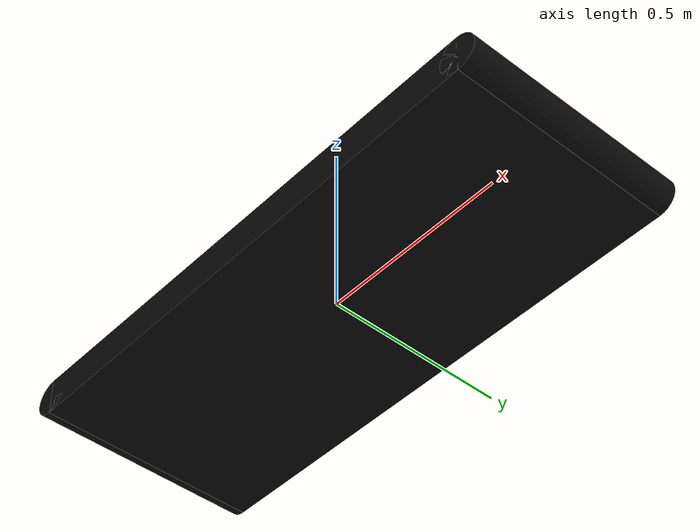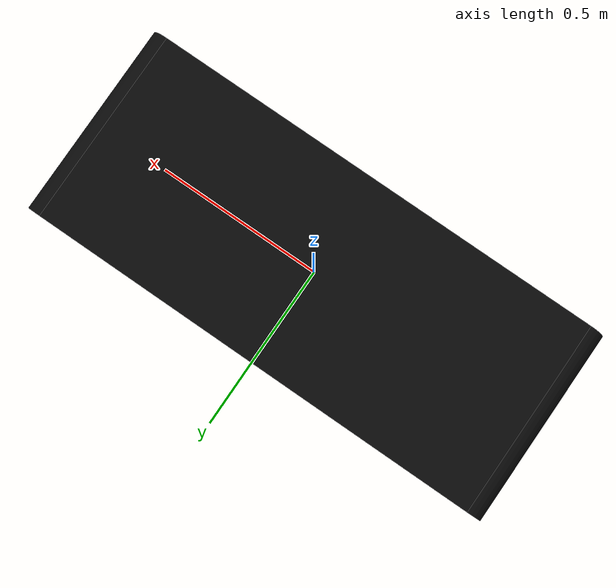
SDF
<?xml version='1.0'?>
<sdf version="1.7">

    <model name="conveyor">

        <link name='base_link'>
            <pose relative_to='__model__'>0 0 0 0 0 0</pose>
            <inertial>
                <mass>6.06</mass>
                <inertia>
                    <ixx>0.002731</ixx>
                    <ixy>0</ixy>
                    <ixz>0</ixz>
                    <iyy>0.032554</iyy>
                    <iyz>1.5e-05</iyz>
                    <izz>0.031391</izz>
                </inertia>
            </inertial>
            <collision name='main_collision'>
                <pose relative_to='base_link'>0 0 0 0 0 0</pose>
                <geometry>
                    <box>
                        <size>1.4 0.6 0.1</size>
                    </box>
                </geometry>
                <surface>
                    <friction>
                        <ode>
                            <mu>0.7</mu>
                            <mu2>150</mu2>
                            <fdir1>0 1 0</fdir1>
                        </ode>
                    </friction>
                </surface>
            </collision>
            <collision name='collision_1'>
                <pose relative_to='base_link'>0.7 0 0 -1.570796327 0 0</pose>
                <geometry>
                    <cylinder>
                        <length>0.6</length>
                        <radius>0.05</radius>
                    </cylinder>
                </geometry>
                <surface>
                    <friction>
                        <ode>
                            <mu>0.7</mu>
                            <mu2>150</mu2>
                            <fdir1>0 1 0</fdir1>
                        </ode>
                    </friction>
                </surface>
            </collision>
            <collision name='collision_2'>
                <pose relative_to='base_link'>-0.7 0 0 -1.570796327 0 0</pose>
                <geometry>
                    <cylinder>
                        <length>0.6</length>
                        <radius>0.05</radius>
                    </cylinder>
                </geometry>
                <surface>
                    <friction>
                        <ode>
                            <mu>0.7</mu>
                            <mu2>150</mu2>
                            <fdir1>0 1 0</fdir1>
                        </ode>
                    </friction>
                </surface>
            </collision>
            <visual name='main_visual'>
                <pose relative_to='base_link'>0 0 0 0 0 0</pose>
                <geometry>
                    <box>
                        <size>1.4 0.6 0.1</size>
                    </box>
                </geometry>
                <material>
                    <ambient>0.02 0.02 0.02 1</ambient>  <!-- Near-black ambient -->
    <diffuse>0.04 0.04 0.04 1</diffuse>  <!-- Barely visible under light -->
    <specular>0.1 0.1 0.1 1</specular>  <!-- Almost matte -->
    <emissive>0 0 0 1</emissive>
                </material>

            </visual>
            <visual name='visual_1'>
                <pose relative_to='base_link'>0.7 0 0 -1.570796327 0 0</pose>
                <geometry>
                    <cylinder>
                        <length>0.6</length>
                        <radius>0.05</radius>
                    </cylinder>
                </geometry>
                <material>
                    <ambient>0.02 0.02 0.02 1</ambient>  <!-- Near-black ambient -->
    <diffuse>0.04 0.04 0.04 1</diffuse>  <!-- Barely visible under light -->
    <specular>0.1 0.1 0.1 1</specular>  <!-- Almost matte -->
    <emissive>0 0 0 1</emissive>
                </material>
            </visual>
            <visual name='visual_2'>
                <pose relative_to='base_link'>-0.7 0 0 -1.570796327 0 0</pose>
                <geometry>
                    <cylinder>
                        <length>0.6</length>
                        <radius>0.05</radius>
                    </cylinder>
                </geometry>
                <material>
                       <ambient>0.02 0.02 0.02 1</ambient>  <!-- Near-black ambient -->
    <diffuse>0.04 0.04 0.04 1</diffuse>  <!-- Barely visible under light -->
    <specular>0.1 0.1 0.1 1</specular>  <!-- Almost matte -->
    <emissive>0 0 0 1</emissive>
                </material>
            </visual>
            <gravity>1</gravity>
            <kinematic>0</kinematic>
        </link>

    </model>
</sdf>
